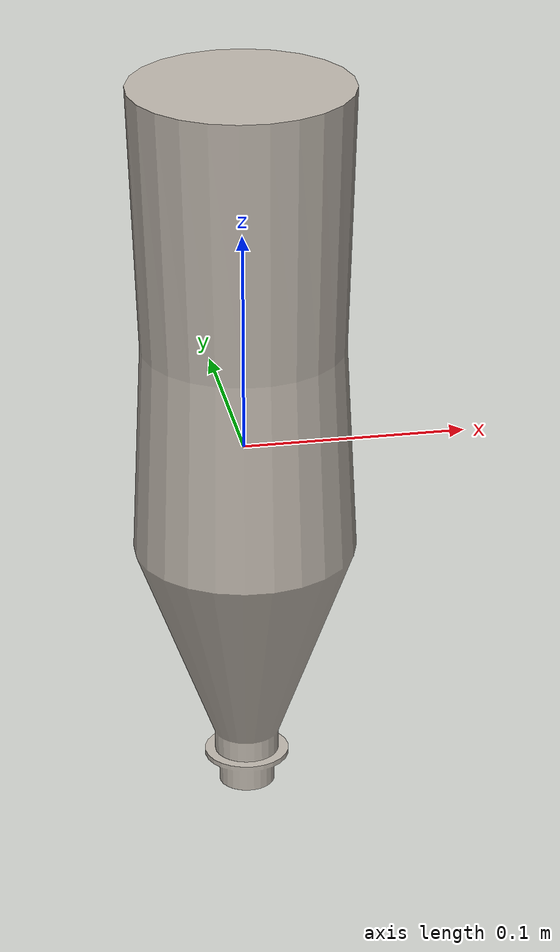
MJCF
<mujoco model="bottle">
  <asset>
    <mesh file="meshes/bottle1.stl" name="bottle1_mesh"/>
    <texture type="skybox" file="../textures/glass.png" name="tex-glass"/>
    <material name="glass" reflectance="0.5" texrepeat="5 5" texture="tex-glass" texuniform="true"/>
  </asset>
  <worldbody>
    <body>
      <body name="collision">
        <geom pos="0 0 0" mesh="bottle1_mesh" type="mesh" solimp="0.998 0.998 0.001" solref="0.001 1" density="50" friction="0.95 0.3 0.1" material="glass" group="1" condim="4"/>
        <!--geom pos="0 0 0" mesh="bottle1_mesh" type="mesh" solimp="0.998 0.998 0.001" solref="0.001 1" density="50" friction="0.95 0.3 0.1" material="glass" group="0"/-->
      </body>
      <body name="visual">
        <geom pos="0 0 0" mesh="bottle1_mesh" type="mesh" material="glass" conaffinity="0" contype="0" group="0" mass="0.0001"/>
        <geom pos="0 0 0" mesh="bottle1_mesh" type="mesh" material="glass" conaffinity="0" contype="0" group="1" mass="0.0001"/>
      </body>
      <site rgba="0 0 0 0" size="0.005" pos="0 0 -0.082" name="bottom_site"/>
      <site rgba="0 0 0 0" size="0.005" pos="0 0 0.075" name="top_site"/>
      <site rgba="0 0 0 0" size="0.005" pos="0.0254 0.0254 0" name="horizontal_radius_site"/>
    </body>
  </worldbody>
</mujoco>
